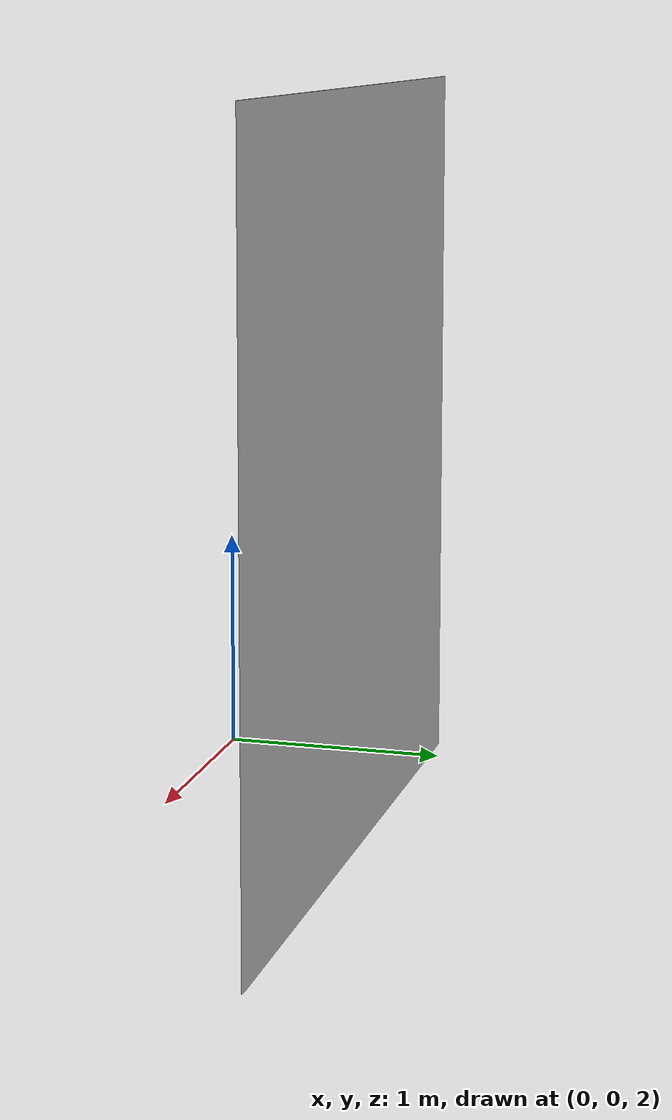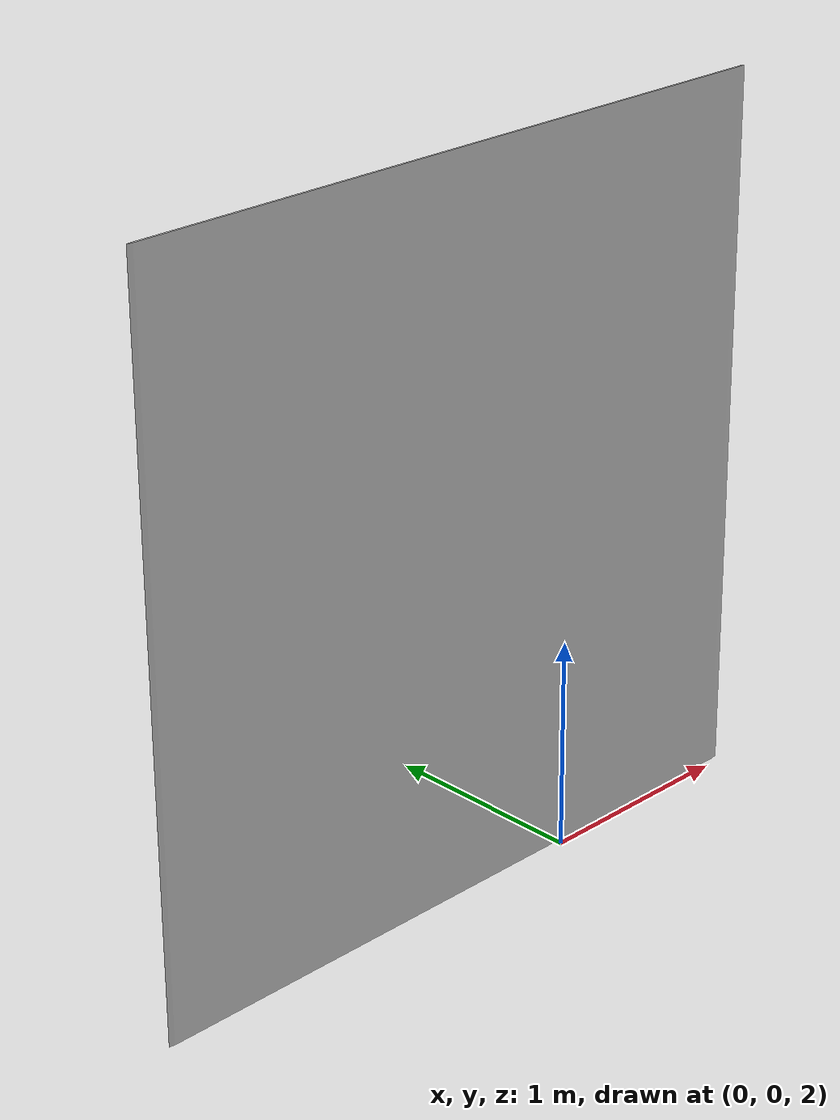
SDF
<?xml version="1.0" ?>
<sdf version="1.4">
    <model name="small_wall">
        <static>true</static>
        <link name="chassis">
            <pose>0 0 1.5 0 0 0</pose>
            <collision name="collision">
                <geometry>
                    <box>
                        <size>3.0 1.0 3.0</size>
                    </box>
                </geometry>
            </collision>
            <visual name="visual">
                <geometry>
                    <mesh>
                        <uri>model://small_wall/meshes/small_wall.dae</uri>
                        <scale>3.0 1.0 3.0</scale>
                    </mesh>
                </geometry>
                <material>
                  <script>
                    <uri>model://brick_box_3x1x3/materials/scripts</uri>
            <uri>model://small_wall/materials/textures</uri>
                    <name>BrickBox/Diffuse</name>
                  </script>
                </material>
            </visual>
        </link>
    </model>
</sdf>
